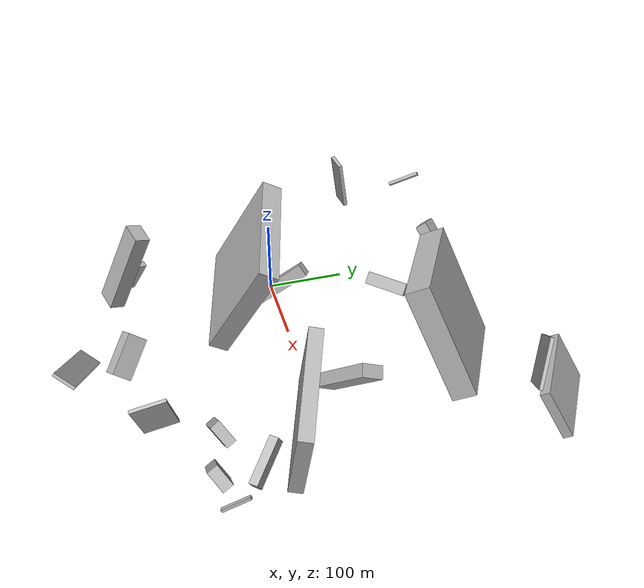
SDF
<sdf version="1.6">
 <world name="default">
  <scene>
   <sky><clouds><speed>12</speed></clouds></sky>
   <ambient>0.4 0.4 0.4 1</ambient>
   <background>0.7 0.7 0.7 1</background>
   <shadows>1</shadows>
  </scene>
  <gravity>0 0 -9.8066</gravity>
  <magnetic_field>6e-06 2.3e-05 -4.2e-05</magnetic_field>
  <physics default="0" name="default_physics" type="ode">
   <ode>
    <solver>
     <type>quick</type>
     <iters>10</iters>
     <sor>1.0</sor>
     <use_dynamic_moi_rescaling>0</use_dynamic_moi_rescaling>
    </solver>
    <constraints>
     <cfm>0</cfm>
     <erp>0.2</erp>
     <contact_max_correcting_vel>100</contact_max_correcting_vel>
     <contact_surface_layer>0.001</contact_surface_layer>
    </constraints>
   </ode>
   <max_step_size>0.004</max_step_size>
   <real_time_factor>1</real_time_factor>
   <real_time_update_rate>250</real_time_update_rate>
  </physics>
  <light name="sun" type="directional">
   <pose>0 0 10 0 0 0</pose>
   <diffuse>0.8 0.8 0.8 1</diffuse>
   <specular>0.2 0.2 0.2 1</specular>
   <attenuation>
    <range>1000</range>
    <constant>0.9</constant>
    <linear>0.01</linear>
    <quadratic>0.001</quadratic>
   </attenuation>
   <direction>-0.5 0.1 -0.9</direction>
  </light>
  <model name="building_1">
   <static>0</static>
   <pose>113.17603104665031 127.47591709027387 53.77326212736228 0.09651345357194341 -0.7055999676096991 -0.9333290142782726</pose>
   <link name="link">
    <gravity>0</gravity>
    <pose>0 0 8.0 0 0 0</pose>
    <collision name="collision"><geometry><box><size>5 57 16</size></box></geometry></collision>
    <visual name="visual">
     <cast_shadows>0</cast_shadows>
     <geometry><box><size>5 57 16</size></box></geometry>
     <material>
      <script>
       <uri>model://HANNAS_wall/materials/scripts</uri>
       <uri>model://HANNAS_wall/materials/textures</uri>
       <name>vrc/HANNAS_wall</name>
      </script>
     </material>
    </visual>
   </link>
  </model>
  <model name="building_2">
   <static>0</static>
   <pose>170.59071487783493 -71.39911495200812 105.67283216295131 1.3673479261798667 -0.4695589122715102 -1.744760487561029</pose>
   <link name="link">
    <gravity>0</gravity>
    <pose>0 0 75.0 0 0 0</pose>
    <collision name="collision"><geometry><box><size>25 150 150</size></box></geometry></collision>
    <visual name="visual">
     <cast_shadows>0</cast_shadows>
     <geometry><box><size>25 150 150</size></box></geometry>
     <material>
      <script>
       <uri>model://HANNAS_wall/materials/scripts</uri>
       <uri>model://HANNAS_wall/materials/textures</uri>
       <name>vrc/HANNAS_wall</name>
      </script>
     </material>
    </visual>
   </link>
  </model>
  <model name="building_3">
   <static>0</static>
   <pose>275.2669404091499 40.28103177813765 67.64363659122432 0.9399833039891567 0.6373128303027159 -0.2808560037000842</pose>
   <link name="link">
    <gravity>0</gravity>
    <pose>0 0 14.5 0 0 0</pose>
    <collision name="collision"><geometry><box><size>16 91 29</size></box></geometry></collision>
    <visual name="visual">
     <cast_shadows>0</cast_shadows>
     <geometry><box><size>16 91 29</size></box></geometry>
     <material>
      <script>
       <uri>model://HANNAS_wall/materials/scripts</uri>
       <uri>model://HANNAS_wall/materials/textures</uri>
       <name>vrc/HANNAS_wall</name>
      </script>
     </material>
    </visual>
   </link>
  </model>
  <model name="building_4">
   <static>0</static>
   <pose>371.7237449661081 249.75473620862783 40.75732109720721 1.6825877972717969 -1.0180051492917652 -2.2174646898637027</pose>
   <link name="link">
    <gravity>0</gravity>
    <pose>0 0 56.5 0 0 0</pose>
    <collision name="collision"><geometry><box><size>68 12 113</size></box></geometry></collision>
    <visual name="visual">
     <cast_shadows>0</cast_shadows>
     <geometry><box><size>68 12 113</size></box></geometry>
     <material>
      <script>
       <uri>model://HANNAS_wall/materials/scripts</uri>
       <uri>model://HANNAS_wall/materials/textures</uri>
       <name>vrc/HANNAS_wall</name>
      </script>
     </material>
    </visual>
   </link>
  </model>
  <model name="building_5">
   <static>0</static>
   <pose>335.4786010782057 -43.82066040357413 60.5999063878892 0.1301068221815161 0.1397587681963285 1.2463421019526393</pose>
   <link name="link">
    <gravity>0</gravity>
    <pose>0 0 47.0 0 0 0</pose>
    <collision name="collision"><geometry><box><size>17 150 94</size></box></geometry></collision>
    <visual name="visual">
     <cast_shadows>0</cast_shadows>
     <geometry><box><size>17 150 94</size></box></geometry>
     <material>
      <script>
       <uri>model://HANNAS_wall/materials/scripts</uri>
       <uri>model://HANNAS_wall/materials/textures</uri>
       <name>vrc/HANNAS_wall</name>
      </script>
     </material>
    </visual>
   </link>
  </model>
  <model name="building_6">
   <static>0</static>
   <pose>-63.73141022730658 121.89406281166208 80.59882364067917 0.10958091360658419 -0.07057325637474242 0.06442005842909153</pose>
   <link name="link">
    <gravity>0</gravity>
    <pose>0 0 31.5 0 0 0</pose>
    <collision name="collision"><geometry><box><size>31 5 63</size></box></geometry></collision>
    <visual name="visual">
     <cast_shadows>0</cast_shadows>
     <geometry><box><size>31 5 63</size></box></geometry>
     <material>
      <script>
       <uri>model://HANNAS_wall/materials/scripts</uri>
       <uri>model://HANNAS_wall/materials/textures</uri>
       <name>vrc/HANNAS_wall</name>
      </script>
     </material>
    </visual>
   </link>
  </model>
  <model name="building_7">
   <static>0</static>
   <pose>151.71323549855856 -270.31645283770894 52.96513061374307 2.5381272893880586 -0.5288657754261386 -0.27723043300283823</pose>
   <link name="link">
    <gravity>0</gravity>
    <pose>0 0 2.0 0 0 0</pose>
    <collision name="collision"><geometry><box><size>124 29 4</size></box></geometry></collision>
    <visual name="visual">
     <cast_shadows>0</cast_shadows>
     <geometry><box><size>124 29 4</size></box></geometry>
     <material>
      <script>
       <uri>model://HANNAS_wall/materials/scripts</uri>
       <uri>model://HANNAS_wall/materials/textures</uri>
       <name>vrc/HANNAS_wall</name>
      </script>
     </material>
    </visual>
   </link>
  </model>
  <model name="building_8">
   <static>0</static>
   <pose>274.75879838662604 -195.14569136067678 73.60223610549646 -2.7625038940532103 -1.0793046959264667 -0.34841223377498126</pose>
   <link name="link">
    <gravity>0</gravity>
    <pose>0 0 2.0 0 0 0</pose>
    <collision name="collision"><geometry><box><size>82 42 4</size></box></geometry></collision>
    <visual name="visual">
     <cast_shadows>0</cast_shadows>
     <geometry><box><size>82 42 4</size></box></geometry>
     <material>
      <script>
       <uri>model://HANNAS_wall/materials/scripts</uri>
       <uri>model://HANNAS_wall/materials/textures</uri>
       <name>vrc/HANNAS_wall</name>
      </script>
     </material>
    </visual>
   </link>
  </model>
  <model name="building_9">
   <static>0</static>
   <pose>93.17440205093332 -37.12921209074164 60.025560804072036 -1.8912870405576343 -0.6837330118908181 1.2505733993562738</pose>
   <link name="link">
    <gravity>0</gravity>
    <pose>0 0 6.0 0 0 0</pose>
    <collision name="collision"><geometry><box><size>150 16 12</size></box></geometry></collision>
    <visual name="visual">
     <cast_shadows>0</cast_shadows>
     <geometry><box><size>150 16 12</size></box></geometry>
     <material>
      <script>
       <uri>model://HANNAS_wall/materials/scripts</uri>
       <uri>model://HANNAS_wall/materials/textures</uri>
       <name>vrc/HANNAS_wall</name>
      </script>
     </material>
    </visual>
   </link>
  </model>
  <model name="building_10">
   <static>0</static>
   <pose>303.7550340127245 257.7900299383763 64.96969647111065 1.7048618494938677 -0.8796215074243771 2.5287391230700185</pose>
   <link name="link">
    <gravity>0</gravity>
    <pose>0 0 2.0 0 0 0</pose>
    <collision name="collision"><geometry><box><size>61 116 4</size></box></geometry></collision>
    <visual name="visual">
     <cast_shadows>0</cast_shadows>
     <geometry><box><size>61 116 4</size></box></geometry>
     <material>
      <script>
       <uri>model://HANNAS_wall/materials/scripts</uri>
       <uri>model://HANNAS_wall/materials/textures</uri>
       <name>vrc/HANNAS_wall</name>
      </script>
     </material>
    </visual>
   </link>
  </model>
  <model name="building_11">
   <static>0</static>
   <pose>394.5596869128289 -130.3934766426161 38.89318003088367 -1.9151792094650748 1.0244854715094547 0.9776769779725358</pose>
   <link name="link">
    <gravity>0</gravity>
    <pose>0 0 2.0 0 0 0</pose>
    <collision name="collision"><geometry><box><size>4 37 4</size></box></geometry></collision>
    <visual name="visual">
     <cast_shadows>0</cast_shadows>
     <geometry><box><size>4 37 4</size></box></geometry>
     <material>
      <script>
       <uri>model://HANNAS_wall/materials/scripts</uri>
       <uri>model://HANNAS_wall/materials/textures</uri>
       <name>vrc/HANNAS_wall</name>
      </script>
     </material>
    </visual>
   </link>
  </model>
  <model name="building_12">
   <static>0</static>
   <pose>78.63590755480513 -215.99754891168178 87.48587555983812 0.3597979383883757 -0.1965337373533032 -2.8665515063548623</pose>
   <link name="link">
    <gravity>0</gravity>
    <pose>0 0 54.0 0 0 0</pose>
    <collision name="collision"><geometry><box><size>27 19 108</size></box></geometry></collision>
    <visual name="visual">
     <cast_shadows>0</cast_shadows>
     <geometry><box><size>27 19 108</size></box></geometry>
     <material>
      <script>
       <uri>model://HANNAS_wall/materials/scripts</uri>
       <uri>model://HANNAS_wall/materials/textures</uri>
       <name>vrc/HANNAS_wall</name>
      </script>
     </material>
    </visual>
   </link>
  </model>
  <model name="building_13">
   <static>0</static>
   <pose>371.61407365667935 -105.13239565895293 33.81624952722984 1.0569376383958635 0.02755738400657358 -2.3247053064005665</pose>
   <link name="link">
    <gravity>0</gravity>
    <pose>0 0 28.5 0 0 0</pose>
    <collision name="collision"><geometry><box><size>11 16 57</size></box></geometry></collision>
    <visual name="visual">
     <cast_shadows>0</cast_shadows>
     <geometry><box><size>11 16 57</size></box></geometry>
     <material>
      <script>
       <uri>model://HANNAS_wall/materials/scripts</uri>
       <uri>model://HANNAS_wall/materials/textures</uri>
       <name>vrc/HANNAS_wall</name>
      </script>
     </material>
    </visual>
   </link>
  </model>
  <model name="building_14">
   <static>0</static>
   <pose>166.53267555520927 199.49339997065897 91.53902211041081 1.399123440877673 -0.45259421910867687 1.1661057304450941</pose>
   <link name="link">
    <gravity>0</gravity>
    <pose>0 0 75.0 0 0 0</pose>
    <collision name="collision"><geometry><box><size>30 150 150</size></box></geometry></collision>
    <visual name="visual">
     <cast_shadows>0</cast_shadows>
     <geometry><box><size>30 150 150</size></box></geometry>
     <material>
      <script>
       <uri>model://HANNAS_wall/materials/scripts</uri>
       <uri>model://HANNAS_wall/materials/textures</uri>
       <name>vrc/HANNAS_wall</name>
      </script>
     </material>
    </visual>
   </link>
  </model>
  <model name="building_15">
   <static>0</static>
   <pose>328.2576974287672 -145.35397216971717 32.05230118643129 2.349382097006812 -0.40197539066754506 1.8868542391613252</pose>
   <link name="link">
    <gravity>0</gravity>
    <pose>0 0 14.0 0 0 0</pose>
    <collision name="collision"><geometry><box><size>14 53 28</size></box></geometry></collision>
    <visual name="visual">
     <cast_shadows>0</cast_shadows>
     <geometry><box><size>14 53 28</size></box></geometry>
     <material>
      <script>
       <uri>model://HANNAS_wall/materials/scripts</uri>
       <uri>model://HANNAS_wall/materials/textures</uri>
       <name>vrc/HANNAS_wall</name>
      </script>
     </material>
    </visual>
   </link>
  </model>
  <model name="building_16">
   <static>0</static>
   <pose>-38.68432576372712 239.2119525082448 35.49454291161411 2.4235669134606845 0.3174967848732794 2.4395544330676953</pose>
   <link name="link">
    <gravity>0</gravity>
    <pose>0 0 16.0 0 0 0</pose>
    <collision name="collision"><geometry><box><size>28 17 32</size></box></geometry></collision>
    <visual name="visual">
     <cast_shadows>0</cast_shadows>
     <geometry><box><size>28 17 32</size></box></geometry>
     <material>
      <script>
       <uri>model://HANNAS_wall/materials/scripts</uri>
       <uri>model://HANNAS_wall/materials/textures</uri>
       <name>vrc/HANNAS_wall</name>
      </script>
     </material>
    </visual>
   </link>
  </model>
  <model name="building_17">
   <static>0</static>
   <pose>1.7531944180979835 -196.45148436755025 60.79039041184843 1.9250344508232848 -0.3756845096193484 -2.794154671053525</pose>
   <link name="link">
    <gravity>0</gravity>
    <pose>0 0 12.0 0 0 0</pose>
    <collision name="collision"><geometry><box><size>8 44 24</size></box></geometry></collision>
    <visual name="visual">
     <cast_shadows>0</cast_shadows>
     <geometry><box><size>8 44 24</size></box></geometry>
     <material>
      <script>
       <uri>model://HANNAS_wall/materials/scripts</uri>
       <uri>model://HANNAS_wall/materials/textures</uri>
       <name>vrc/HANNAS_wall</name>
      </script>
     </material>
    </visual>
   </link>
  </model>
  <model name="building_18">
   <static>0</static>
   <pose>287.8001724942064 -131.2581076671453 33.53967823084938 1.0341999303078429 -0.7523141432295516 -2.3858795454729353</pose>
   <link name="link">
    <gravity>0</gravity>
    <pose>0 0 6.5 0 0 0</pose>
    <collision name="collision"><geometry><box><size>30 41 13</size></box></geometry></collision>
    <visual name="visual">
     <cast_shadows>0</cast_shadows>
     <geometry><box><size>30 41 13</size></box></geometry>
     <material>
      <script>
       <uri>model://HANNAS_wall/materials/scripts</uri>
       <uri>model://HANNAS_wall/materials/textures</uri>
       <name>vrc/HANNAS_wall</name>
      </script>
     </material>
    </visual>
   </link>
  </model>
  <model name="building_19">
   <static>0</static>
   <pose>209.98029796025628 -225.70714223592472 80.34114132413251 0.6102052456371522 -0.7005840778649045 -1.5612982238159938</pose>
   <link name="link">
    <gravity>0</gravity>
    <pose>0 0 25.0 0 0 0</pose>
    <collision name="collision"><geometry><box><size>24 18 50</size></box></geometry></collision>
    <visual name="visual">
     <cast_shadows>0</cast_shadows>
     <geometry><box><size>24 18 50</size></box></geometry>
     <material>
      <script>
       <uri>model://HANNAS_wall/materials/scripts</uri>
       <uri>model://HANNAS_wall/materials/textures</uri>
       <name>vrc/HANNAS_wall</name>
      </script>
     </material>
    </visual>
   </link>
  </model>
  <model name="building_20">
   <static>0</static>
   <pose>-69.26365923399368 194.73063059282273 91.36976683198131 -0.9829183898370307 0.6396643899447931 0.025237456434379628</pose>
   <link name="link">
    <gravity>0</gravity>
    <pose>0 0 21.5 0 0 0</pose>
    <collision name="collision"><geometry><box><size>4 6 43</size></box></geometry></collision>
    <visual name="visual">
     <cast_shadows>0</cast_shadows>
     <geometry><box><size>4 6 43</size></box></geometry>
     <material>
      <script>
       <uri>model://HANNAS_wall/materials/scripts</uri>
       <uri>model://HANNAS_wall/materials/textures</uri>
       <name>vrc/HANNAS_wall</name>
      </script>
     </material>
    </visual>
   </link>
  </model>
 </world>
</sdf>
